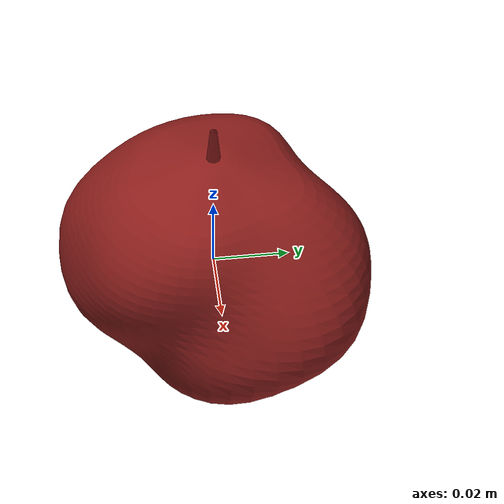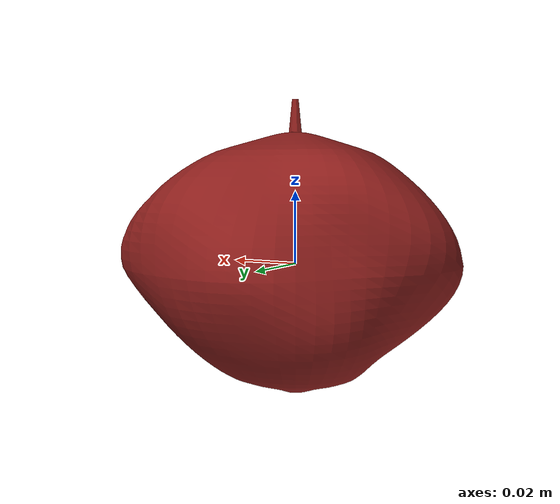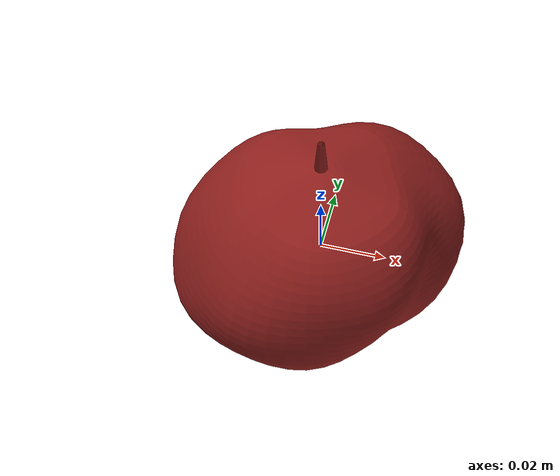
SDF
<?xml version="1.0" ?>
<sdf version="1.7">
  <model name="apple_10">
    <pose>0 0 0 0 0 0</pose>
    <link name="link">
      <inertial>
        <mass>0.19</mass>
        <inertia>
          <ixx>0.00012160</ixx>
          <iyy>0.00012160</iyy>
          <izz>0.00012160</izz>
          <ixy>0</ixy>
          <ixz>0</ixz>
          <iyz>0</iyz>
        </inertia>
      </inertial>

      <collision name="collision">
        <geometry>
          <sphere>
            <radius>0.04000</radius>
          </sphere>
        </geometry>
        <surface>
          <friction>
            <ode>
              <mu>0.8</mu>
              <mu2>0.8</mu2>
            </ode>
          </friction>
          <contact>
            <ode>
              <kp>100000.0</kp>
              <kd>1.0</kd>
              <min_depth>0.001</min_depth>
            </ode>
          </contact>
        </surface>
      </collision>

      <visual name="visual">
        <geometry>
          <mesh>
            <uri>model://apple_10/meshes/apple_10_v4.obj</uri>
            <scale>0.04000 0.04000 0.04000</scale>
          </mesh>
        </geometry>
        <material>
          <ambient>0.549 0.118 0.110 1</ambient>
          <diffuse>0.549 0.118 0.110 1</diffuse>
          <specular>0.25 0.25 0.25 1</specular>
        </material>
      </visual>
    </link>
  </model>
</sdf>
